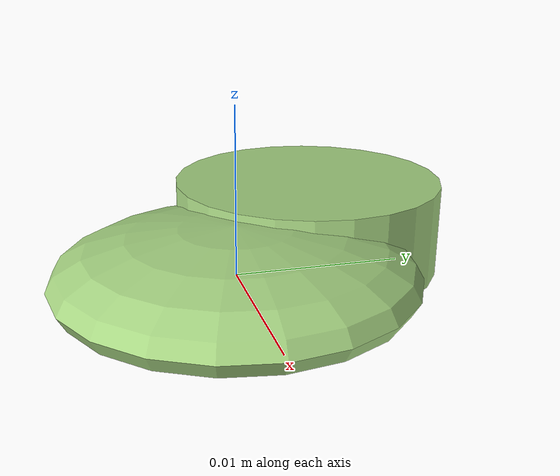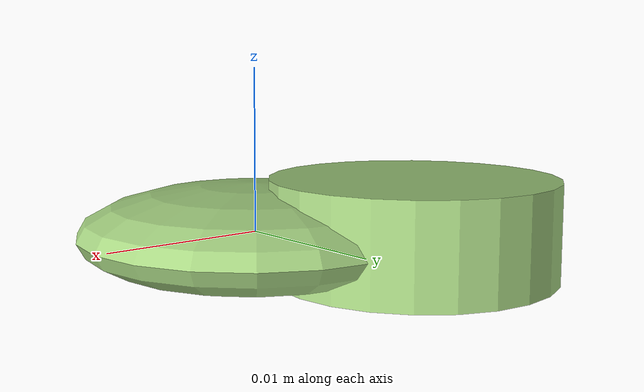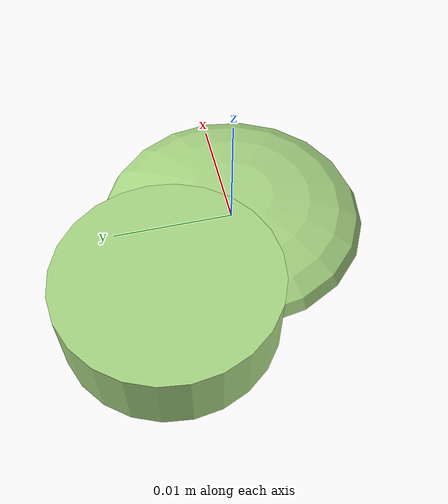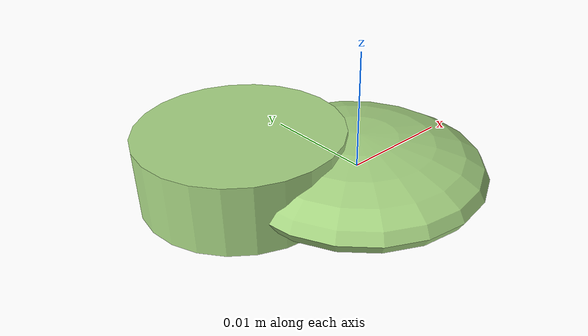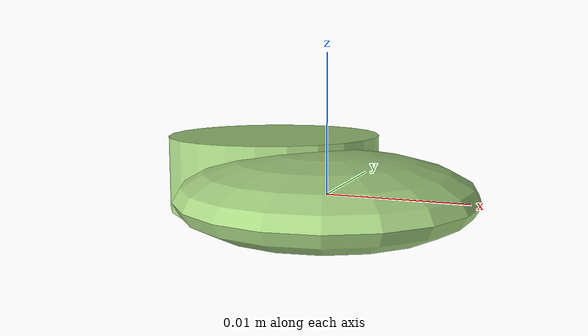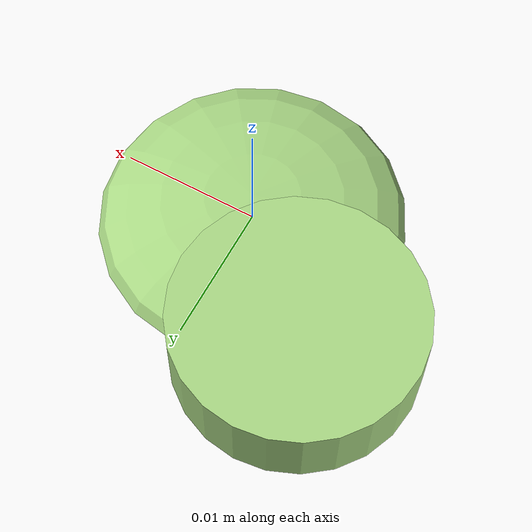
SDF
<?xml version="1.0" ?>
<!-- |    This document was autogenerated by xmacro from data/veggie_template/veggie_base.sdf.xacro  | -->
<!-- |    EDITING THIS FILE BY HAND IS NOT RECOMMENDED                                               | -->
<sdf version="1.8">
	<!-- Parameters -->
	<!-- Base -->
	<!-- Joint 0 -->
	<!-- Link 1 -->
	<!-- Joint 1 -->
	<!-- Link 2 -->
	<!-- Primitives -->
	<!-- All dimensions are half -->
	<!-- Object -->
	<model name="veggie">
		<!-- link0 -->
		<link name="link0">
			<inertial>
				<mass>0.001477517678015086</mass>
				<inertia>
					<ixx>3.787907170484129e-08</ixx>
					<ixy>0</ixy>
					<ixz>0</ixz>
					<iyy>3.687099498947335e-08</iyy>
					<iyz>0</iyz>
					<izz>6.94192186538404e-08</izz>
				</inertia>
			</inertial>
			<visual name="link0_visual">
				<pose>0 0 0 0 0 0</pose>
				<geometry>
					<ellipsoid>
						<radii>0.010758880440246681 0.010916267431484035 0.0030033214153496013</radii>
					</ellipsoid>
				</geometry>
				<material>
					<ambient>0.659 0.839 0.514 1</ambient>
					<diffuse>0.659 0.839 0.514 1</diffuse>
					<specular>0 0 0 0</specular>
					<emissive>0 0 0 1</emissive>
				</material>
			</visual>
			<collision name="link0_collision">
				<pose>0 0 0 0 0 0 </pose>
				<geometry>
					<ellipsoid>
						<radii>0.010758880440246681 0.010916267431484035 0.0030033214153496013</radii>
					</ellipsoid>
				</geometry>
			</collision>
		</link>
		<!-- link1 -->
		<joint name="joint0" type="fixed">
			<pose relative_to="link0">-0.007027156283215773 0.006548977198179395 0.0004298735091974363 0.0 0.0 0.0</pose>
			<parent>link0</parent>
			<child>link1</child>
		</joint>
		<link name="link1">
			<pose relative_to="joint0">0 0 0 0 0 0</pose>
			<inertial>
				<mass>0.001455768649660392</mass>
				<inertia>
					<ixx>3.245892685225411e-08</ixx>
					<ixy>0</ixy>
					<ixz>0</ixz>
					<iyy>3.245892685225411e-08</iyy>
					<iyz>0</iyz>
					<izz>5.616887547412665e-08</izz>
				</inertia>
			</inertial>
			<visual name="link1_visual">
				<pose>0 0 0 0 0 0</pose>
				<geometry>
					<cylinder>
						<radius>0.008784492596990883</radius>
						<length>0.006004932250047633</length>
					</cylinder>
				</geometry>
				<material>
					<ambient>0.659 0.839 0.514 1</ambient>
					<diffuse>0.659 0.839 0.514 1</diffuse>
					<specular>0 0 0 0</specular>
					<emissive>0 0 0 1</emissive>
				</material>
			</visual>
			<collision name="link1_collision">
				<pose>0 0 0 0 0 0 </pose>
				<geometry>
					<cylinder>
						<radius>0.008784492596990883</radius>
						<length>0.006004932250047633</length>
					</cylinder>
				</geometry>
			</collision>
		</link>
		<!-- link2 -->
	</model>
</sdf>
